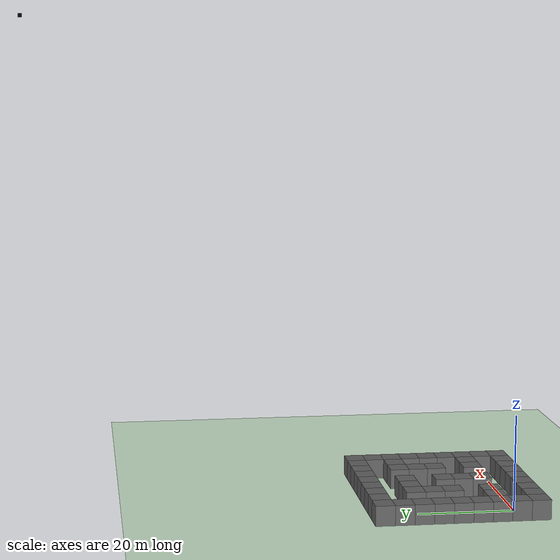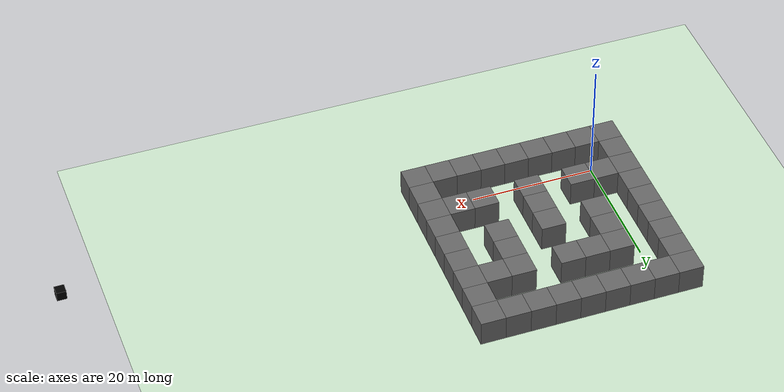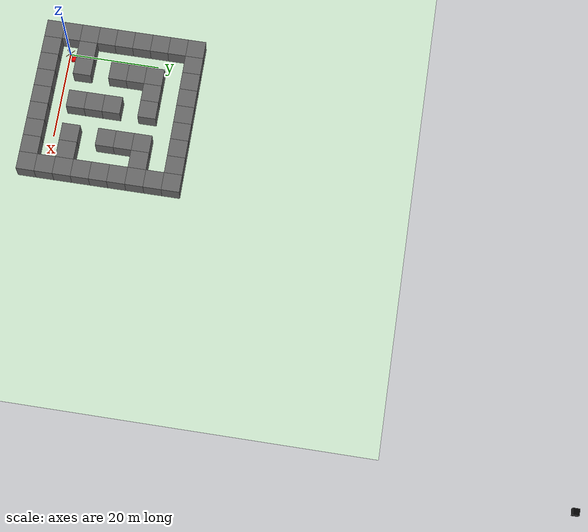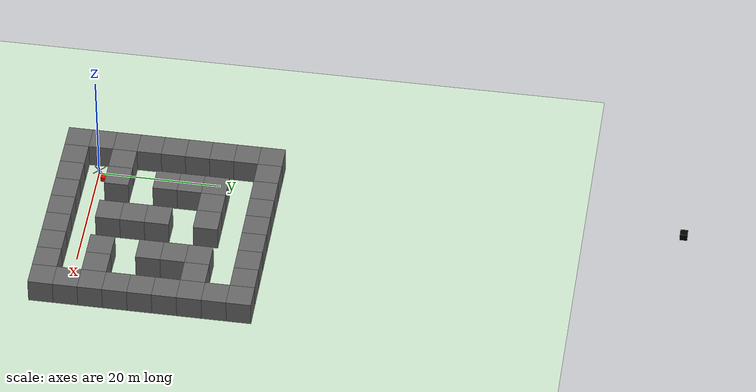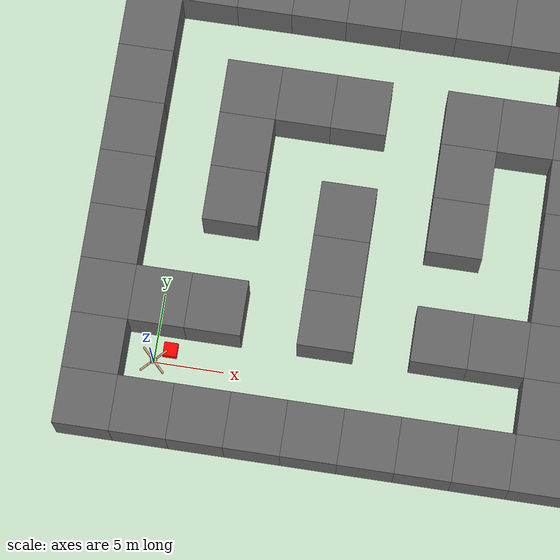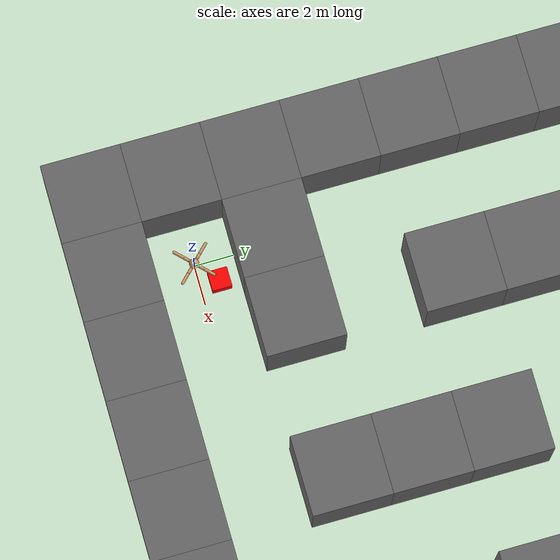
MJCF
<mujoco model="ant">
  <compiler inertiafromgeom="true" angle="degree" coordinate="local" />
  <option timestep="0.02" integrator="RK4" />
  <custom>
    <numeric name="init_qpos" data="0.0 0.0 0.55 1.0 0.0 0.0 0.0 0.0 1.0 0.0 -1.0 0.0 -1.0 0.0 1.0" />
  </custom>
  <default>
    <joint limited="true" armature="1" damping="1" />
    <geom condim="3" conaffinity="0" margin="0.01" friction="1 0.5 0.5" solref=".02 1" solimp=".8 .8 .01" rgba="0.8 0.6 0.4 1" density="5.0" />
  </default>
  <asset>
    <texture type="skybox" builtin="gradient" width="100" height="100" rgb1="1 1 1" rgb2="0 0 0" />
    <texture name="texgeom" type="cube" builtin="flat" mark="cross" width="127" height="1278" rgb1="0.8 0.6 0.4" rgb2="0.8 0.6 0.4" markrgb="1 1 1" random="0.01" />
    <texture name="texplane" type="2d" builtin="checker" rgb1="0 0 0" rgb2="0.8 0.8 0.8" width="100" height="100" />
    <material name='MatPlane' texture="texplane" shininess="1" texrepeat="60 60" specular="1"  reflectance="0.5" />
    <material name='geom' texture="texgeom" texuniform="true" />
  </asset>
  <worldbody>
    <light directional="true" cutoff="100" exponent="1" diffuse="1 1 1" specular=".1 .1 .1" pos="0 0 1.3" dir="-0 0 -1.3" />
    <geom name='floor' pos='0 0 0' size='80 80 80' type='plane' conaffinity='1' rgba='0.8 0.9 0.8 1' condim='3' />
    <body name="torso" pos="0 0 0.75">
      <geom name="torso_geom" type="sphere" size="0.25" pos="0 0 0" />
      <joint name="root" type="free" limited="false" pos="0 0 0" axis="0 0 1" margin="0.01" armature="0" damping="0" />
      <body name="front_left_leg" pos="0 0 0">
        <geom name="aux_1_geom" type="capsule" size="0.08" fromto="0.0 0.0 0.0 0.2 0.2 0.0" />
        <body name="aux_1" pos="0.2 0.2 0">
          <joint name="hip_1" type="hinge" pos="0.0 0.0 0.0" axis="0 0 1" range="-30 30" />
          <geom name="left_leg_geom" type="capsule" size="0.08" fromto="0.0 0.0 0.0 0.2 0.2 0.0" />
          <body pos="0.2 0.2 0">
            <joint name="ankle_1" type="hinge" pos="0.0 0.0 0.0" axis="-1 1 0" range="30 70" />
            <geom name="left_ankle_geom" type="capsule" size="0.08" fromto="0.0 0.0 0.0 0.4 0.4 0.0" />
          </body>
        </body>
      </body>
      <body name="front_right_leg" pos="0 0 0">
        <geom name="aux_2_geom" type="capsule" size="0.08" fromto="0.0 0.0 0.0 -0.2 0.2 0.0" />
        <body name="aux_2" pos="-0.2 0.2 0">
          <joint name="hip_2" type="hinge" pos="0.0 0.0 0.0" axis="0 0 1" range="-30 30" />
          <geom name="right_leg_geom" type="capsule" size="0.08" fromto="0.0 0.0 0.0 -0.2 0.2 0.0" />
          <body pos="-0.2 0.2 0">
            <joint name="ankle_2" type="hinge" pos="0.0 0.0 0.0" axis="1 1 0" range="-70 -30" />
            <geom name="right_ankle_geom" type="capsule" size="0.08" fromto="0.0 0.0 0.0 -0.4 0.4 0.0" />
          </body>
        </body>
      </body>
      <body name="back_leg" pos="0 0 0">
        <geom name="aux_3_geom" type="capsule" size="0.08" fromto="0.0 0.0 0.0 -0.2 -0.2 0.0" />
        <body name="aux_3" pos="-0.2 -0.2 0">
          <joint name="hip_3" type="hinge" pos="0.0 0.0 0.0" axis="0 0 1" range="-30 30" />
          <geom name="back_leg_geom" type="capsule" size="0.08" fromto="0.0 0.0 0.0 -0.2 -0.2 0.0" />
          <body pos="-0.2 -0.2 0">
            <joint name="ankle_3" type="hinge" pos="0.0 0.0 0.0" axis="-1 1 0" range="-70 -30" />
            <geom name="third_ankle_geom" type="capsule" size="0.08" fromto="0.0 0.0 0.0 -0.4 -0.4 0.0" />
          </body>
        </body>
      </body>
      <body name="right_back_leg" pos="0 0 0">
        <geom name="aux_4_geom" type="capsule" size="0.08" fromto="0.0 0.0 0.0 0.2 -0.2 0.0" />
        <body name="aux_4" pos="0.2 -0.2 0">
          <joint name="hip_4" type="hinge" pos="0.0 0.0 0.0" axis="0 0 1" range="-30 30" />
          <geom name="rightback_leg_geom" type="capsule" size="0.08" fromto="0.0 0.0 0.0 0.2 -0.2 0.0" />
          <body pos="0.2 -0.2 0">
            <joint name="ankle_4" type="hinge" pos="0.0 0.0 0.0" axis="1 1 0" range="30 70" />
            <geom name="fourth_ankle_geom" type="capsule" size="0.08" fromto="0.0 0.0 0.0 0.4 -0.4 0.0" />
          </body>
        </body>
      </body>
    </body>

    <body name="goal_point" pos="1.0 1.0 0.12"> <!--name was ee_link--> <!--euler = "-1.570796 0 0"-->
      <site name="goal_point:box" type="box" pos="0.05 0.0 0.0" size="0.5 0.5 0.5"  quat = " 1.0 0.0  0.0 0."     rgba="1 0 0 1" />
    </body>
    <body name="subgoal_point" pos="1.0 1.0 0.12">
      <site name="subgoal_point:box" type="box" pos="100.0 100.0 100.0" size="0.5 0.5 0.5"  quat = " 1.0 0.0  0.0 0."     rgba="0 0 0 1" />
    </body>
    <body name="way_point0" pos="1.0 1.0 0.12"> <!--name was ee_link--> <!--euler = "-1.570796 0 0"-->
      <site name="way_point:box0" type="box" pos="0.05 0.0 0.0" size="0.5 0.5 0.5"  quat = " 1.0 0.0  0.0 0."     rgba="0 0 1 1" />
    </body>
    <body name="way_point1" pos="1.0 1.0 0.12"> <!--name was ee_link--> <!--euler = "-1.570796 0 0"-->
      <site name="way_point:box1" type="box" pos="0.05 0.0 0.0" size="0.5 0.5 0.5"  quat = " 1.0 0.0  0.0 0."     rgba="0 0 1 1" />
    </body>
    <body name="way_point2" pos="1.0 1.0 0.12"> <!--name was ee_link--> <!--euler = "-1.570796 0 0"-->
      <site name="way_point:box2" type="box" pos="0.05 0.0 0.0" size="0.5 0.5 0.5"  quat = " 1.0 0.0  0.0 0."     rgba="0 0 1 1" />
    </body>
    <body name="way_point3" pos="1.0 1.0 0.12"> <!--name was ee_link--> <!--euler = "-1.570796 0 0"-->
      <site name="way_point:box3" type="box" pos="0.05 0.0 0.0" size="0.5 0.5 0.5"  quat = " 1.0 0.0  0.0 0."     rgba="0 0 1 1" />
    </body>
    <body name="way_point4" pos="1.0 1.0 0.12"> <!--name was ee_link--> <!--euler = "-1.570796 0 0"-->
      <site name="way_point:box4" type="box" pos="0.05 0.0 0.0" size="0.5 0.5 0.5"  quat = " 1.0 0.0  0.0 0."     rgba="0 0 1 1" />
    </body>
    <body name="way_point5" pos="1.0 1.0 0.12"> <!--name was ee_link--> <!--euler = "-1.570796 0 0"-->
      <site name="way_point:box5" type="box" pos="0.05 0.0 0.0" size="0.5 0.5 0.5"  quat = " 1.0 0.0  0.0 0."     rgba="0 0 1 1" />
    </body>
    <body name="way_point6" pos="1.0 1.0 0.12"> <!--name was ee_link--> <!--euler = "-1.570796 0 0"-->
      <site name="way_point:box6" type="box" pos="0.05 0.0 0.0" size="0.5 0.5 0.5"  quat = " 1.0 0.0  0.0 0."     rgba="0 0 1 1" />
    </body>
    <body name="way_point7" pos="1.0 1.0 0.12"> <!--name was ee_link--> <!--euler = "-1.570796 0 0"-->
      <site name="way_point:box7" type="box" pos="0.05 0.0 0.0" size="0.5 0.5 0.5"  quat = " 1.0 0.0  0.0 0."     rgba="0 0 1 1" />
    </body>
    <body name="way_point8" pos="1.0 1.0 0.12"> <!--name was ee_link--> <!--euler = "-1.570796 0 0"-->
      <site name="way_point:box8" type="box" pos="0.05 0.0 0.0" size="0.5 0.5 0.5"  quat = " 1.0 0.0  0.0 0."     rgba="0 0 1 1" />
    </body>
    <body name="way_point9" pos="1.0 1.0 0.12"> <!--name was ee_link--> <!--euler = "-1.570796 0 0"-->
      <site name="way_point:box9" type="box" pos="0.05 0.0 0.0" size="0.5 0.5 0.5"  quat = " 1.0 0.0  0.0 0."     rgba="0 0 1 1" />
    </body>
    <body name="way_point10" pos="1.0 1.0 0.12"> <!--name was ee_link--> <!--euler = "-1.570796 0 0"-->
      <site name="way_point:box10" type="box" pos="0.05 0.0 0.0" size="0.5 0.5 0.5"  quat = " 1.0 0.0  0.0 0."     rgba="0 0 1 1" />
    </body>
    <body name="way_point11" pos="1.0 1.0 0.12"> <!--name was ee_link--> <!--euler = "-1.570796 0 0"-->
      <site name="way_point:box11" type="box" pos="0.05 0.0 0.0" size="0.5 0.5 0.5"  quat = " 1.0 0.0  0.0 0."     rgba="0 0 1 1" />
    </body>
    <body name="way_point12" pos="1.0 1.0 0.12"> <!--name was ee_link--> <!--euler = "-1.570796 0 0"-->
      <site name="way_point:box12" type="box" pos="0.05 0.0 0.0" size="0.5 0.5 0.5"  quat = " 1.0 0.0  0.0 0."     rgba="0 0 1 1" />
    </body>
    <body name="way_point13" pos="1.0 1.0 0.12"> <!--name was ee_link--> <!--euler = "-1.570796 0 0"-->
      <site name="way_point:box13" type="box" pos="0.05 0.0 0.0" size="0.5 0.5 0.5"  quat = " 1.0 0.0  0.0 0."     rgba="0 0 1 1" />
    </body>

    <body name="wall" pos="0.0 0.0 0.0">
      <geom name="wall1" type="box" pos="-4 -4 0" size="2 2 4" rgba="0.4 0.4 0.4 1"
                contype="1" conaffinity="1" friction="2 0.1 0.002"/>
      <geom name="wall2" type="box" pos="0 -4 0" size="2 2 4" rgba="0.4 0.4 0.4 1"
                contype="1" conaffinity="1" friction="2 0.1 0.002"/>
      <geom name="wall3" type="box" pos="4 -4 0" size="2 2 4" rgba="0.4 0.4 0.4 1"
                contype="1" conaffinity="1" friction="2 0.1 0.002"/>
      <geom name="wall4" type="box" pos="8 -4 0" size="2 2 4" rgba="0.4 0.4 0.4 1"
                contype="1" conaffinity="1" friction="2 0.1 0.002"/>
      <geom name="wall5" type="box" pos="12 -4 0" size="2 2 4" rgba="0.4 0.4 0.4 1"
                contype="1" conaffinity="1" friction="2 0.1 0.002"/>
      <geom name="wall6" type="box" pos="16 -4 0" size="2 2 4" rgba="0.4 0.4 0.4 1"
                contype="1" conaffinity="1" friction="2 0.1 0.002"/>
      <geom name="wall7" type="box" pos="20 -4 0" size="2 2 4" rgba="0.4 0.4 0.4 1"
                contype="1" conaffinity="1" friction="2 0.1 0.002"/>
      <geom name="wall8" type="box" pos="24 -4 0" size="2 2 4" rgba="0.4 0.4 0.4 1"
                contype="1" conaffinity="1" friction="2 0.1 0.002"/>
      <geom name="wall9" type="box" pos="28 -4 0" size="2 2 4" rgba="0.4 0.4 0.4 1"
                contype="1" conaffinity="1" friction="2 0.1 0.002"/>
      <geom name="wall10" type="box" pos="-4 0 0" size="2 2 4" rgba="0.4 0.4 0.4 1"
                contype="1" conaffinity="1" friction="2 0.1 0.002"/>
      <geom name="wall11" type="box" pos="28 0 0" size="2 2 4" rgba="0.4 0.4 0.4 1"
                contype="1" conaffinity="1" friction="2 0.1 0.002"/>
      <geom name="wall12" type="box" pos="-4 4 0" size="2 2 4" rgba="0.4 0.4 0.4 1"
                contype="1" conaffinity="1" friction="2 0.1 0.002"/>
      <geom name="wall13" type="box" pos="0 4 0" size="2 2 4" rgba="0.4 0.4 0.4 1"
                contype="1" conaffinity="1" friction="2 0.1 0.002"/>
      <geom name="wall14" type="box" pos="4 4 0" size="2 2 4" rgba="0.4 0.4 0.4 1"
                contype="1" conaffinity="1" friction="2 0.1 0.002"/>
      <geom name="wall15" type="box" pos="12 4 0" size="2 2 4" rgba="0.4 0.4 0.4 1"
                contype="1" conaffinity="1" friction="2 0.1 0.002"/>
      <geom name="wall16" type="box" pos="20 4 0" size="2 2 4" rgba="0.4 0.4 0.4 1"
                contype="1" conaffinity="1" friction="2 0.1 0.002"/>
      <geom name="wall17" type="box" pos="24 4 0" size="2 2 4" rgba="0.4 0.4 0.4 1"
                contype="1" conaffinity="1" friction="2 0.1 0.002"/>
      <geom name="wall18" type="box" pos="28 4 0" size="2 2 4" rgba="0.4 0.4 0.4 1"
                contype="1" conaffinity="1" friction="2 0.1 0.002"/>
      <geom name="wall19" type="box" pos="-4 8 0" size="2 2 4" rgba="0.4 0.4 0.4 1"
                contype="1" conaffinity="1" friction="2 0.1 0.002"/>
      <geom name="wall20" type="box" pos="12 8 0" size="2 2 4" rgba="0.4 0.4 0.4 1"
                contype="1" conaffinity="1" friction="2 0.1 0.002"/>
      <geom name="wall21" type="box" pos="28 8 0" size="2 2 4" rgba="0.4 0.4 0.4 1"
                contype="1" conaffinity="1" friction="2 0.1 0.002"/>
      <geom name="wall22" type="box" pos="-4 12 0" size="2 2 4" rgba="0.4 0.4 0.4 1"
                contype="1" conaffinity="1" friction="2 0.1 0.002"/>
      <geom name="wall23" type="box" pos="4 12 0" size="2 2 4" rgba="0.4 0.4 0.4 1"
                contype="1" conaffinity="1" friction="2 0.1 0.002"/>
      <geom name="wall24" type="box" pos="12 12 0" size="2 2 4" rgba="0.4 0.4 0.4 1"
                contype="1" conaffinity="1" friction="2 0.1 0.002"/>
      <geom name="wall25" type="box" pos="20 12 0" size="2 2 4" rgba="0.4 0.4 0.4 1"
                contype="1" conaffinity="1" friction="2 0.1 0.002"/>
      <geom name="wall26" type="box" pos="28 12 0" size="2 2 4" rgba="0.4 0.4 0.4 1"
                contype="1" conaffinity="1" friction="2 0.1 0.002"/>
      <geom name="wall27" type="box" pos="-4 16 0" size="2 2 4" rgba="0.4 0.4 0.4 1"
                contype="1" conaffinity="1" friction="2 0.1 0.002"/>
      <geom name="wall28" type="box" pos="4 16 0" size="2 2 4" rgba="0.4 0.4 0.4 1"
                contype="1" conaffinity="1" friction="2 0.1 0.002"/>
      <geom name="wall29" type="box" pos="20 16 0" size="2 2 4" rgba="0.4 0.4 0.4 1"
                contype="1" conaffinity="1" friction="2 0.1 0.002"/>
      <geom name="wall30" type="box" pos="28 16 0" size="2 2 4" rgba="0.4 0.4 0.4 1"
                contype="1" conaffinity="1" friction="2 0.1 0.002"/>
      <geom name="wall31" type="box" pos="-4 20 0" size="2 2 4" rgba="0.4 0.4 0.4 1"
                contype="1" conaffinity="1" friction="2 0.1 0.002"/>
      <geom name="wall32" type="box" pos="4 20 0" size="2 2 4" rgba="0.4 0.4 0.4 1"
                contype="1" conaffinity="1" friction="2 0.1 0.002"/>
      <geom name="wall33" type="box" pos="8 20 0" size="2 2 4" rgba="0.4 0.4 0.4 1"
                contype="1" conaffinity="1" friction="2 0.1 0.002"/>
      <geom name="wall34" type="box" pos="12 20 0" size="2 2 4" rgba="0.4 0.4 0.4 1"
                contype="1" conaffinity="1" friction="2 0.1 0.002"/>
      <geom name="wall35" type="box" pos="20 20 0" size="2 2 4" rgba="0.4 0.4 0.4 1"
                contype="1" conaffinity="1" friction="2 0.1 0.002"/>
      <geom name="wall36" type="box" pos="24 20 0" size="2 2 4" rgba="0.4 0.4 0.4 1"
                contype="1" conaffinity="1" friction="2 0.1 0.002"/>
      <geom name="wall37" type="box" pos="28 20 0" size="2 2 4" rgba="0.4 0.4 0.4 1"
                contype="1" conaffinity="1" friction="2 0.1 0.002"/>
      <geom name="wall38" type="box" pos="-4 24 0" size="2 2 4" rgba="0.4 0.4 0.4 1"
                contype="1" conaffinity="1" friction="2 0.1 0.002"/>
      <geom name="wall39" type="box" pos="28 24 0" size="2 2 4" rgba="0.4 0.4 0.4 1"
                contype="1" conaffinity="1" friction="2 0.1 0.002"/>
      <geom name="wall40" type="box" pos="-4 28 0" size="2 2 4" rgba="0.4 0.4 0.4 1"
                contype="1" conaffinity="1" friction="2 0.1 0.002"/>
      <geom name="wall41" type="box" pos="0 28 0" size="2 2 4" rgba="0.4 0.4 0.4 1"
                contype="1" conaffinity="1" friction="2 0.1 0.002"/>
      <geom name="wall42" type="box" pos="4 28 0" size="2 2 4" rgba="0.4 0.4 0.4 1"
                contype="1" conaffinity="1" friction="2 0.1 0.002"/>
      <geom name="wall43" type="box" pos="8 28 0" size="2 2 4" rgba="0.4 0.4 0.4 1"
                contype="1" conaffinity="1" friction="2 0.1 0.002"/>
      <geom name="wall44" type="box" pos="12 28 0" size="2 2 4" rgba="0.4 0.4 0.4 1"
                contype="1" conaffinity="1" friction="2 0.1 0.002"/>
      <geom name="wall45" type="box" pos="16 28 0" size="2 2 4" rgba="0.4 0.4 0.4 1"
                contype="1" conaffinity="1" friction="2 0.1 0.002"/>
      <geom name="wall46" type="box" pos="20 28 0" size="2 2 4" rgba="0.4 0.4 0.4 1"
                contype="1" conaffinity="1" friction="2 0.1 0.002"/>
      <geom name="wall47" type="box" pos="24 28 0" size="2 2 4" rgba="0.4 0.4 0.4 1"
                contype="1" conaffinity="1" friction="2 0.1 0.002"/>
      <geom name="wall48" type="box" pos="28 28 0" size="2 2 4" rgba="0.4 0.4 0.4 1"
                contype="1" conaffinity="1" friction="2 0.1 0.002"/>
    </body>

  </worldbody>
  <actuator>
    <motor joint="hip_4" ctrlrange="-30.0 30.0" ctrllimited="true" />
    <motor joint="ankle_4" ctrlrange="-30.0 30.0" ctrllimited="true" />
    <motor joint="hip_1" ctrlrange="-30.0 30.0" ctrllimited="true" />
    <motor joint="ankle_1" ctrlrange="-30.0 30.0" ctrllimited="true" />
    <motor joint="hip_2" ctrlrange="-30.0 30.0" ctrllimited="true" />
    <motor joint="ankle_2" ctrlrange="-30.0 30.0" ctrllimited="true" />
    <motor joint="hip_3" ctrlrange="-30.0 30.0" ctrllimited="true" />
    <motor joint="ankle_3" ctrlrange="-30.0 30.0" ctrllimited="true" />
  </actuator>
</mujoco>
